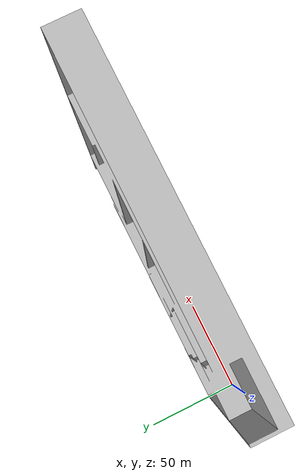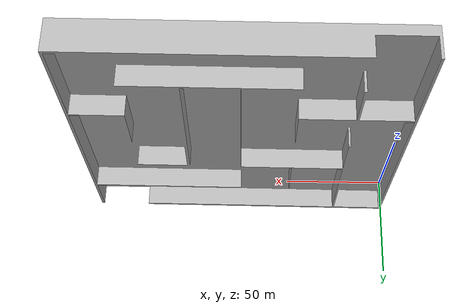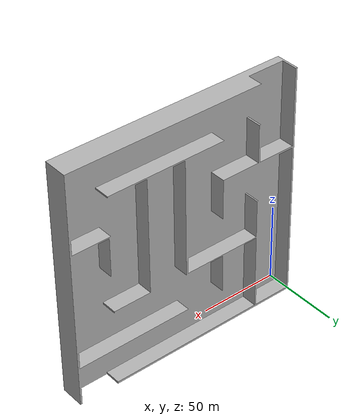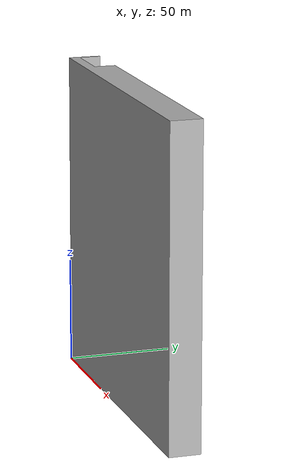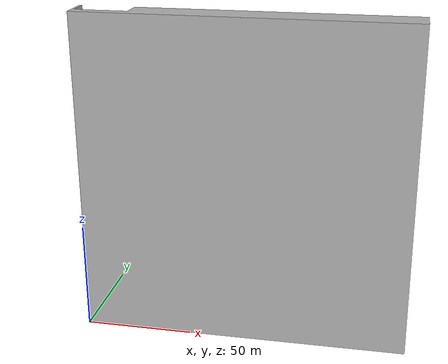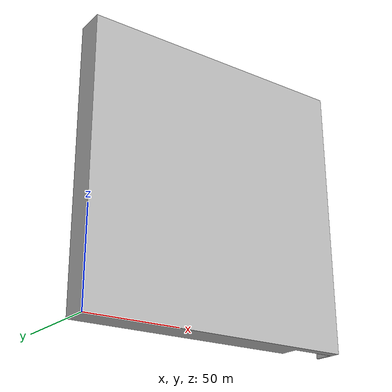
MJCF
<mujoco model="maze_model">

    <asset>
        <!-- Load your STL mesh -->
        <mesh name="maze" file="MazeIII.STL" />
    </asset>

    <worldbody>
        <body name="maze" pos="0 0 0">
            <!-- Render and collide using the STL -->
            <geom type="mesh" mesh="maze" name="maze_geom"
                  rgba="0.7 0.7 0.7 1" />
        </body>
    </worldbody>

</mujoco>
